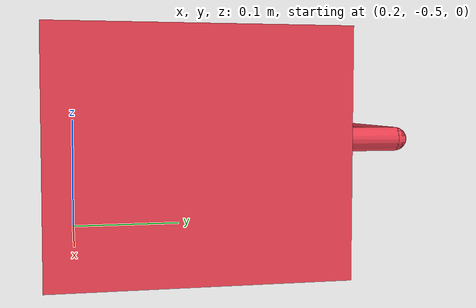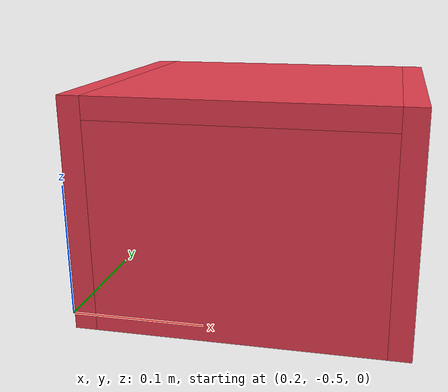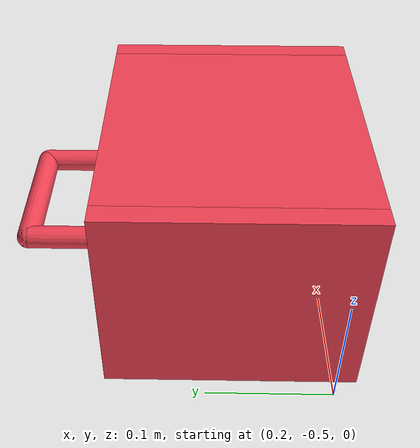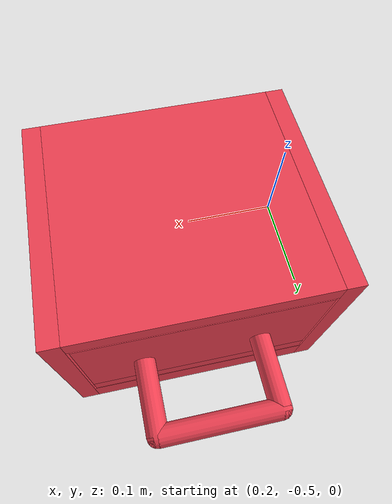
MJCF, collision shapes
<mujoco model="drawer">
    <compiler angle="radian" inertiafromgeom="auto" inertiagrouprange="1 5"/>
    <asset>

        <material name="drawer_col" rgba="0.96 0.26 0.33 0.5" shininess="0" specular="0"/>
        <material name="drawer_handle" rgba=".75 .75 .75 1" shininess="1" reflectance=".7" specular=".5"/>
        <material name="drawer_body" rgba="0.6 0.6 0.6 1" shininess="1" reflectance="1" specular=".5"/>

    </asset>
    <default>

        <default class="drawer_base">
            <joint armature="0.001" damping="2" frictionloss="2" limited="true"/>
            <geom conaffinity="0" contype="0" group="1" type="mesh"/>
            <position ctrllimited="true" ctrlrange="0 1.57"/>
            <default class="drawer_viz">
                <geom condim="4" type="mesh"/>
            </default>
            <default class="drawer_col">
                <geom conaffinity="1" condim="3" contype="1" group="4" material="drawer_col" solimp="0.99 0.99 0.01"
                      solref="0.01 1"/>
            </default>
            <site type="sphere" size=".01" rgba="0 1 0 1" group="5"/>
        </default>
    </default>

    <asset>
        <mesh file="metaworld/drawer/drawer.stl" name="drawer"/>
        <mesh file="metaworld/drawer/drawercase.stl" name="drawercase"/>
        <mesh file="metaworld/drawer/drawerhandle.stl" name="drawerhandle"/>
    </asset>
    <worldbody>
        <body childclass="drawer_base" name="drawer_base" pos="0.33 -0.42 0.084" euler="0 0 3.14">
            <geom material="drawer_body" mesh="drawercase"/>
            <geom class="drawer_col" pos="-0.11 0 0" size="0.008 0.1 0.084" type="box" mass=".05"/>
            <geom class="drawer_col" pos="0.11 0 0" size="0.008 0.1 0.084" type="box" mass=".05"/>
            <geom class="drawer_col" pos="0 0.092 -0.008" size="0.102 0.008 0.076" type="box" mass=".05"/>
            <geom class="drawer_col" pos="0 -0.008 -0.07" size="0.102 0.092 0.014" type="box" mass=".05"/>
            <geom class="drawer_col" pos="0 0 0.076" size="0.102 0.1 0.008" type="box" mass=".05"/>
            <body name="drawer_link_virtual" pos="0 -0.01 0.006">
                <body name="drawer_link_virtual_handle" pos="0 -0.17 -0.01">
                    <site name="drawer_handle_center_target" pos="0 0 0.0001" group="5"/>
                </body>
            </body>
            <body name="drawer_link" pos="0 -0.01 0.006">
                <site name="drawer_handle_center" pos="0 -0.17 -0.01" group="5"/>
                <joint type="slide" range="-0.16 0" axis="0 1 0" name="drawer_slide" pos="0 0 0" damping="2"/>
                <geom material="drawer_body" mesh="drawer"/>
                <geom material="drawer_handle" mesh="drawerhandle" pos="0 -0.114 0" name="drawer_handle"/>
                <geom class="drawer_col" pos="0 -0.082 0.008" size="0.1 0.008 0.052" type="box" mass=".04"/>
                <geom class="drawer_col" pos="0 0.082 0.008" size="0.1 0.008 0.052" type="box" mass=".04"/>
                <geom class="drawer_col" pos="-0.092 0 0.008" size="0.008 0.074 0.052" type="box" mass=".04"/>
                <geom class="drawer_col" pos="0.092 0 0.008" size="0.008 0.074 0.052" type="box" mass=".04"/>
                <geom class="drawer_col" pos="0 0 -0.052" size="0.1 0.09 0.008" type="box" mass=".04"/>
                <geom class="drawer_col" euler="1.571 0 0" pos="-0.05 -0.12 0.0" size="0.009 0.03" type="capsule"
                      mass=".06"/>
                <geom class="drawer_col" euler="0 1.57 0" pos="0 -0.15 0" size="0.009 0.05" type="capsule"
                      mass=".06"/>
                <geom class="drawer_col" euler="1.57 0 0" pos="0.05 -0.12 0" size="0.009 0.03" type="capsule"
                      mass=".06"/>
            </body>
        </body>
    </worldbody>
</mujoco>
